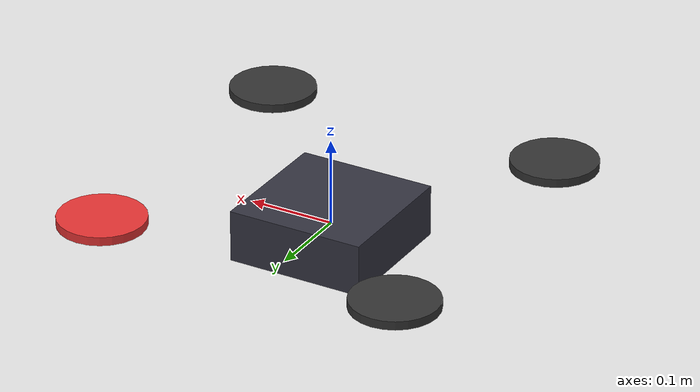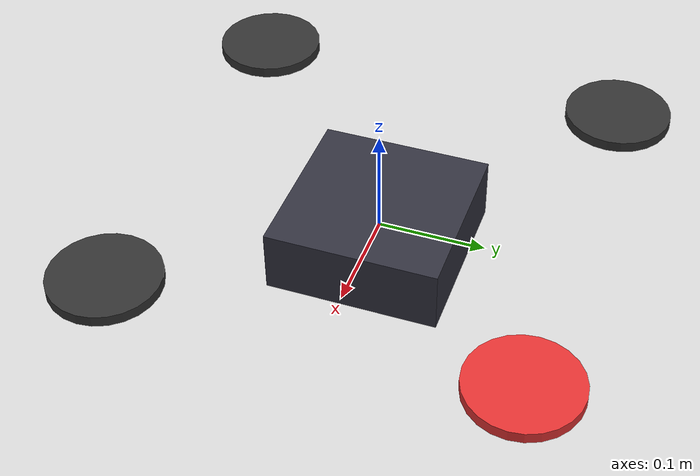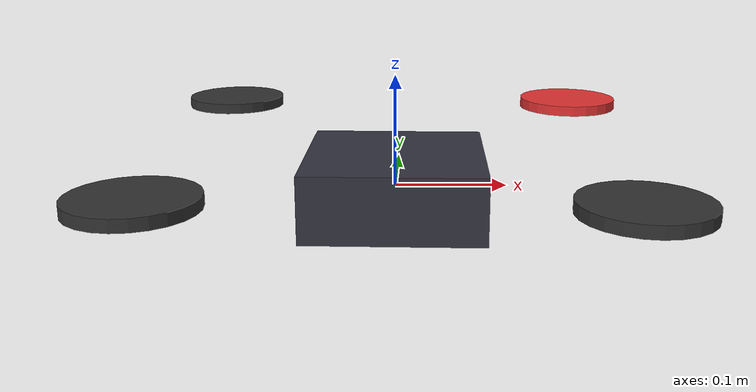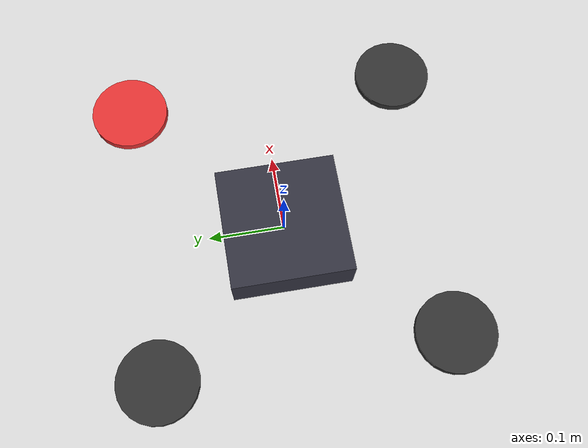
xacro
<?xml version="1.0"?>
<robot name="warehouse_bot" xmlns:xacro="http://ros.org/wiki/xacro">

  <xacro:property name="arm" value="0.18"/>       <!-- rotor arm length -->
  <xacro:property name="body" value="0.16"/>

  <link name="base_link">
    <inertial>
      <mass value="1.0"/>
      <inertia ixx="0.02" ixy="0" ixz="0" iyy="0.02" iyz="0" izz="0.04"/>
    </inertial>
    <collision><geometry><box size="${body} ${body} 0.06"/></geometry></collision>
    <visual>
      <geometry><box size="${body} ${body} 0.06"/></geometry>
      <material name="body"><color rgba="0.2 0.2 0.25 1"/></material>
    </visual>
  </link>

  <!-- Four rotor pods (visual only — flight is kinematic). -->
  <xacro:macro name="rotor" params="name x y rgba">
    <link name="${name}">
      <inertial><mass value="0.02"/><inertia ixx="1e-5" ixy="0" ixz="0" iyy="1e-5" iyz="0" izz="1e-5"/></inertial>
      <visual>
        <geometry><cylinder radius="0.05" length="0.01"/></geometry>
        <material name="${name}_m"><color rgba="${rgba}"/></material>
      </visual>
    </link>
    <joint name="${name}_joint" type="fixed">
      <parent link="base_link"/><child link="${name}"/>
      <origin xyz="${x} ${y} 0.04"/>
    </joint>
  </xacro:macro>
  <xacro:rotor name="rotor_fl" x="${arm}"  y="${arm}"  rgba="0.9 0.2 0.2 1"/>
  <xacro:rotor name="rotor_fr" x="${arm}"  y="${-arm}" rgba="0.2 0.2 0.2 1"/>
  <xacro:rotor name="rotor_bl" x="${-arm}" y="${arm}"  rgba="0.2 0.2 0.2 1"/>
  <xacro:rotor name="rotor_br" x="${-arm}" y="${-arm}" rgba="0.2 0.2 0.2 1"/>

  <link name="imu_link"/>
  <joint name="imu_joint" type="fixed">
    <parent link="base_link"/><child link="imu_link"/>
    <origin xyz="0 0 0"/>
  </joint>

  <gazebo>
    <!-- Kinematic velocity control: /cmd_vel (Twist) → body velocity in the world frame. -->
    <plugin filename="gz-sim-velocity-control-system" name="gz::sim::systems::VelocityControl">
      <topic>cmd_vel</topic>
    </plugin>
    <!-- 3D odometry (x, y, z, yaw) on /odom. -->
    <plugin filename="gz-sim-odometry-publisher-system" name="gz::sim::systems::OdometryPublisher">
      <odom_frame>odom</odom_frame>
      <robot_base_frame>base_link</robot_base_frame>
      <dimensions>3</dimensions>
      <odom_topic>odom</odom_topic>
      <tf_topic>tf</tf_topic>
      <odom_publish_frequency>30</odom_publish_frequency>
    </plugin>
  </gazebo>

  <gazebo reference="imu_link">
    <sensor name="imu" type="imu">
      <topic>imu</topic>
      <gz_frame_id>imu_link</gz_frame_id>
      <update_rate>50</update_rate>
      <always_on>true</always_on>
    </sensor>
  </gazebo>

</robot>
